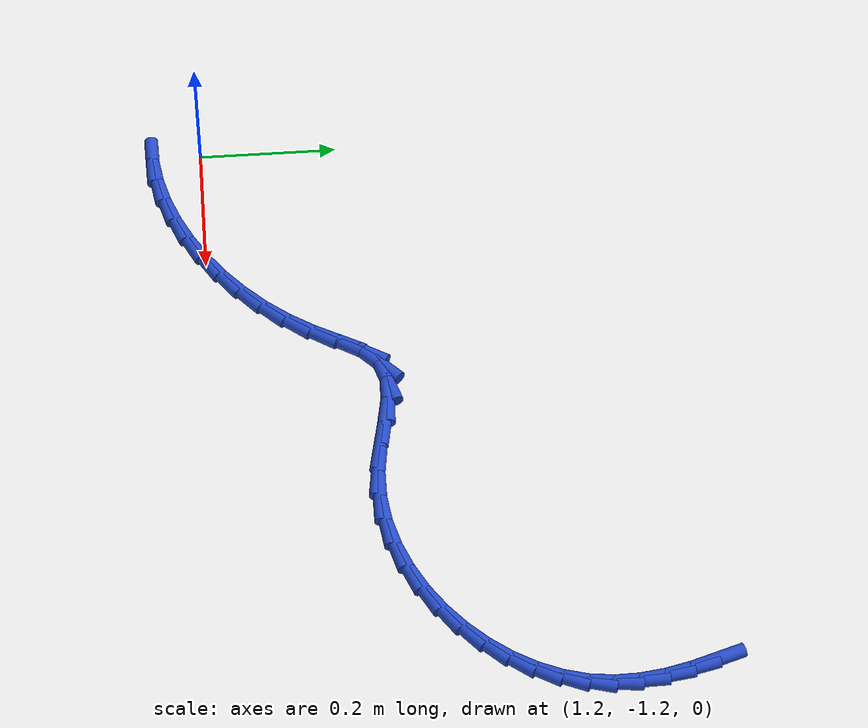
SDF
<sdf version="1.6">
 <world name="default">
  <model name="ground_plane">
   <static>1</static>
   <link name="link">
    <collision name="collision">
     <geometry><plane><normal>0 0 1</normal><size>100 100</size></plane></geometry>
     <surface><friction><ode><mu>100</mu><mu2>50</mu2></ode></friction></surface>
    </collision>
    <visual name="visual">
     <cast_shadows>0</cast_shadows>
     <geometry><plane><normal>0 0 1</normal><size>100 100</size></plane></geometry>
     <material>
      <script><uri>file://media/materials/scripts/gazebo.material</uri><name>Gazebo/WhiteGlow</name></script>
     </material>
    </visual>
   </link>
  </model>
  <model name="line">
   <link name="link_124">
    <pose>2.1224048429013864 -0.5371285283969793 0.01 0 1.57 -1.2620936176630924</pose>
    <collision name="collision">
     <geometry><cylinder><radius>0.01</radius><length>0.08</length></cylinder></geometry>
    </collision>
    <visual name="visual">
     <material>
      <script><name>Gazebo/Blue</name><uri>file://media/materials/scripts/gazebo.material</uri></script>
     </material>
     <geometry><cylinder><radius>0.01</radius><length>0.08</length></cylinder></geometry>
    </visual>
   </link>
   <link name="link_125">
    <pose>2.1337832556659233 -0.5728089770692286 0.01 0 1.57 -1.339660683928909</pose>
    <collision name="collision">
     <geometry><cylinder><radius>0.01</radius><length>0.08</length></cylinder></geometry>
    </collision>
    <visual name="visual">
     <material>
      <script><name>Gazebo/Blue</name><uri>file://media/materials/scripts/gazebo.material</uri></script>
     </material>
     <geometry><cylinder><radius>0.01</radius><length>0.08</length></cylinder></geometry>
    </visual>
   </link>
   <link name="link_126">
    <pose>2.1421646754886083 -0.6084228268894316 0.01 0 1.57 -1.4372988602923291</pose>
    <collision name="collision">
     <geometry><cylinder><radius>0.01</radius><length>0.08</length></cylinder></geometry>
    </collision>
    <visual name="visual">
     <material>
      <script><name>Gazebo/Blue</name><uri>file://media/materials/scripts/gazebo.material</uri></script>
     </material>
     <geometry><cylinder><radius>0.01</radius><length>0.08</length></cylinder></geometry>
    </visual>
   </link>
   <link name="link_127">
    <pose>2.146931417986489 -0.643917072365493 0.01 0 1.57 -1.5556684875766635</pose>
    <collision name="collision">
     <geometry><cylinder><radius>0.01</radius><length>0.08</length></cylinder></geometry>
    </collision>
    <visual name="visual">
     <material>
      <script><name>Gazebo/Blue</name><uri>file://media/materials/scripts/gazebo.material</uri></script>
     </material>
     <geometry><cylinder><radius>0.01</radius><length>0.08</length></cylinder></geometry>
    </visual>
   </link>
   <link name="link_128">
    <pose>2.1474657987766137 -0.6792387080053166 0.01 0 1.57 1.4484431895576104</pose>
    <collision name="collision">
     <geometry><cylinder><radius>0.01</radius><length>0.08</length></cylinder></geometry>
    </collision>
    <visual name="visual">
     <material>
      <script><name>Gazebo/Blue</name><uri>file://media/materials/scripts/gazebo.material</uri></script>
     </material>
     <geometry><cylinder><radius>0.01</radius><length>0.08</length></cylinder></geometry>
    </visual>
   </link>
   <link name="link_129">
    <pose>2.1431501334760306 -0.714334728316806 0.01 0 1.57 1.2999803305079474</pose>
    <collision name="collision">
     <geometry><cylinder><radius>0.01</radius><length>0.08</length></cylinder></geometry>
    </collision>
    <visual name="visual">
     <material>
      <script><name>Gazebo/Blue</name><uri>file://media/materials/scripts/gazebo.material</uri></script>
     </material>
     <geometry><cylinder><radius>0.01</radius><length>0.08</length></cylinder></geometry>
    </visual>
   </link>
   <link name="link_130">
    <pose>2.133498762770912 -0.7490973015410576 0.01 0 1.57 1.1611290758077635</pose>
    <collision name="collision">
     <geometry><cylinder><radius>0.01</radius><length>0.08</length></cylinder></geometry>
    </collision>
    <visual name="visual">
     <material>
      <script><name>Gazebo/Blue</name><uri>file://media/materials/scripts/gazebo.material</uri></script>
     </material>
     <geometry><cylinder><radius>0.01</radius><length>0.08</length></cylinder></geometry>
    </visual>
   </link>
   <link name="link_131">
    <pose>2.11872045647949 -0.7831302191955147 0.01 0 1.57 1.0352894594895294</pose>
    <collision name="collision">
     <geometry><cylinder><radius>0.01</radius><length>0.08</length></cylinder></geometry>
    </collision>
    <visual name="visual">
     <material>
      <script><name>Gazebo/Blue</name><uri>file://media/materials/scripts/gazebo.material</uri></script>
     </material>
     <geometry><cylinder><radius>0.01</radius><length>0.08</length></cylinder></geometry>
    </visual>
   </link>
   <link name="link_132">
    <pose>2.099251495986804 -0.8159427936964466 0.01 0 1.57 0.9191740378306853</pose>
    <collision name="collision">
     <geometry><cylinder><radius>0.01</radius><length>0.08</length></cylinder></geometry>
    </collision>
    <visual name="visual">
     <material>
      <script><name>Gazebo/Blue</name><uri>file://media/materials/scripts/gazebo.material</uri></script>
     </material>
     <geometry><cylinder><radius>0.01</radius><length>0.08</length></cylinder></geometry>
    </visual>
   </link>
   <link name="link_133">
    <pose>2.0755282943523317 -0.847044282779457 0.01 0 1.57 0.8094653625543714</pose>
    <collision name="collision">
     <geometry><cylinder><radius>0.01</radius><length>0.08</length></cylinder></geometry>
    </collision>
    <visual name="visual">
     <material>
      <script><name>Gazebo/Blue</name><uri>file://media/materials/scripts/gazebo.material</uri></script>
     </material>
     <geometry><cylinder><radius>0.01</radius><length>0.08</length></cylinder></geometry>
    </visual>
   </link>
   <link name="link_134">
    <pose>2.047987264635555 -0.8759439441801534 0.01 0 1.57 0.7030469076351508</pose>
    <collision name="collision">
     <geometry><cylinder><radius>0.01</radius><length>0.08</length></cylinder></geometry>
    </collision>
    <visual name="visual">
     <material>
      <script><name>Gazebo/Blue</name><uri>file://media/materials/scripts/gazebo.material</uri></script>
     </material>
     <geometry><cylinder><radius>0.01</radius><length>0.08</length></cylinder></geometry>
    </visual>
   </link>
   <link name="link_135">
    <pose>2.017064819895954 -0.9021510356341418 0.01 0 1.57 0.5970537972132473</pose>
    <collision name="collision">
     <geometry><cylinder><radius>0.01</radius><length>0.08</length></cylinder></geometry>
    </collision>
    <visual name="visual">
     <material>
      <script><name>Gazebo/Blue</name><uri>file://media/materials/scripts/gazebo.material</uri></script>
     </material>
     <geometry><cylinder><radius>0.01</radius><length>0.08</length></cylinder></geometry>
    </visual>
   </link>
   <link name="link_136">
    <pose>1.9831973731930082 -0.9251748148770279 0.01 0 1.57 0.48886884635844946</pose>
    <collision name="collision">
     <geometry><cylinder><radius>0.01</radius><length>0.08</length></cylinder></geometry>
    </collision>
    <visual name="visual">
     <material>
      <script><name>Gazebo/Blue</name><uri>file://media/materials/scripts/gazebo.material</uri></script>
     </material>
     <geometry><cylinder><radius>0.01</radius><length>0.08</length></cylinder></geometry>
    </visual>
   </link>
   <link name="link_137">
    <pose>1.9468213375861982 -0.9445245396444181 0.01 0 1.57 0.37614101794132515</pose>
    <collision name="collision">
     <geometry><cylinder><radius>0.01</radius><length>0.08</length></cylinder></geometry>
    </collision>
    <visual name="visual">
     <material>
      <script><name>Gazebo/Blue</name><uri>file://media/materials/scripts/gazebo.material</uri></script>
     </material>
     <geometry><cylinder><radius>0.01</radius><length>0.08</length></cylinder></geometry>
    </visual>
   </link>
   <link name="link_138">
    <pose>1.9083731261350034 -0.9597094676719191 0.01 0 1.57 0.2568797689287992</pose>
    <collision name="collision">
     <geometry><cylinder><radius>0.01</radius><length>0.08</length></cylinder></geometry>
    </collision>
    <visual name="visual">
     <material>
      <script><name>Gazebo/Blue</name><uri>file://media/materials/scripts/gazebo.material</uri></script>
     </material>
     <geometry><cylinder><radius>0.01</radius><length>0.08</length></cylinder></geometry>
    </visual>
   </link>
   <link name="link_139">
    <pose>1.8682891518989053 -0.9702388566951357 0.01 0 1.57 0.1296626749891366</pose>
    <collision name="collision">
     <geometry><cylinder><radius>0.01</radius><length>0.08</length></cylinder></geometry>
    </collision>
    <visual name="visual">
     <material>
      <script><name>Gazebo/Blue</name><uri>file://media/materials/scripts/gazebo.material</uri></script>
     </material>
     <geometry><cylinder><radius>0.01</radius><length>0.08</length></cylinder></geometry>
    </visual>
   </link>
   <link name="link_140">
    <pose>1.8270058279373838 -0.9756219644496746 0.01 0 1.57 -0.006038888788687265</pose>
    <collision name="collision">
     <geometry><cylinder><radius>0.01</radius><length>0.08</length></cylinder></geometry>
    </collision>
    <visual name="visual">
     <material>
      <script><name>Gazebo/Blue</name><uri>file://media/materials/scripts/gazebo.material</uri></script>
     </material>
     <geometry><cylinder><radius>0.01</radius><length>0.08</length></cylinder></geometry>
    </visual>
   </link>
   <link name="link_141">
    <pose>1.784959567309919 -0.9753680486711425 0.01 0 1.57 -0.1397491013489656</pose>
    <collision name="collision">
     <geometry><cylinder><radius>0.01</radius><length>0.08</length></cylinder></geometry>
    </collision>
    <visual name="visual">
     <material>
      <script><name>Gazebo/Blue</name><uri>file://media/materials/scripts/gazebo.material</uri></script>
     </material>
     <geometry><cylinder><radius>0.01</radius><length>0.08</length></cylinder></geometry>
    </visual>
   </link>
   <link name="link_142">
    <pose>1.7426822621373508 -0.9694210682979123 0.01 0 1.57 -0.20642350490507674</pose>
    <collision name="collision">
     <geometry><cylinder><radius>0.01</radius><length>0.08</length></cylinder></geometry>
    </collision>
    <visual name="visual">
     <material>
      <script><name>Gazebo/Blue</name><uri>file://media/materials/scripts/gazebo.material</uri></script>
     </material>
     <geometry><cylinder><radius>0.01</radius><length>0.08</length></cylinder></geometry>
    </visual>
   </link>
   <link name="link_143">
    <pose>1.7013748487272566 -0.9607710355971079 0.01 0 1.57 -0.1797711318207617</pose>
    <collision name="collision">
     <geometry><cylinder><radius>0.01</radius><length>0.08</length></cylinder></geometry>
    </collision>
    <visual name="visual">
     <material>
      <script><name>Gazebo/Blue</name><uri>file://media/materials/scripts/gazebo.material</uri></script>
     </material>
     <geometry><cylinder><radius>0.01</radius><length>0.08</length></cylinder></geometry>
    </visual>
   </link>
   <link name="link_144">
    <pose>1.662524382939324 -0.9537106203155741 0.01 0 1.57 -0.03359854802306128</pose>
    <collision name="collision">
     <geometry><cylinder><radius>0.01</radius><length>0.08</length></cylinder></geometry>
    </collision>
    <visual name="visual">
     <material>
      <script><name>Gazebo/Blue</name><uri>file://media/materials/scripts/gazebo.material</uri></script>
     </material>
     <geometry><cylinder><radius>0.01</radius><length>0.08</length></cylinder></geometry>
    </visual>
   </link>
   <link name="link_145">
    <pose>1.6276190004966922 -0.9525374086492276 0.01 0 1.57 0.2967380435669778</pose>
    <collision name="collision">
     <geometry><cylinder><radius>0.01</radius><length>0.08</length></cylinder></geometry>
    </collision>
    <visual name="visual">
     <material>
      <script><name>Gazebo/Blue</name><uri>file://media/materials/scripts/gazebo.material</uri></script>
     </material>
     <geometry><cylinder><radius>0.01</radius><length>0.08</length></cylinder></geometry>
    </visual>
   </link>
   <link name="link_146">
    <pose>1.5981468371225045 -0.9615489867939861 0.01 0 1.57 0.7685287061778077</pose>
    <collision name="collision">
     <geometry><cylinder><radius>0.01</radius><length>0.08</length></cylinder></geometry>
    </collision>
    <visual name="visual">
     <material>
      <script><name>Gazebo/Blue</name><uri>file://media/materials/scripts/gazebo.material</uri></script>
     </material>
     <geometry><cylinder><radius>0.01</radius><length>0.08</length></cylinder></geometry>
    </visual>
   </link>
   <link name="link_147">
    <pose>1.5750127070527682 -0.9839154733385947 0.01 0 1.57 1.029932352507426</pose>
    <collision name="collision">
     <geometry><cylinder><radius>0.01</radius><length>0.08</length></cylinder></geometry>
    </collision>
    <visual name="visual">
     <material>
      <script><name>Gazebo/Blue</name><uri>file://media/materials/scripts/gazebo.material</uri></script>
     </material>
     <geometry><cylinder><radius>0.01</radius><length>0.08</length></cylinder></geometry>
    </visual>
   </link>
   <link name="link_148">
    <pose>1.5556658116827078 -1.016127837163021 0.01 0 1.57 1.0781374762268152</pose>
    <collision name="collision">
     <geometry><cylinder><radius>0.01</radius><length>0.08</length></cylinder></geometry>
    </collision>
    <visual name="visual">
     <material>
      <script><name>Gazebo/Blue</name><uri>file://media/materials/scripts/gazebo.material</uri></script>
     </material>
     <geometry><cylinder><radius>0.01</radius><length>0.08</length></cylinder></geometry>
    </visual>
   </link>
   <link name="link_149">
    <pose>1.5362876259072802 -1.05222673045854 0.01 0 1.57 1.0002196221172226</pose>
    <collision name="collision">
     <geometry><cylinder><radius>0.01</radius><length>0.08</length></cylinder></geometry>
    </collision>
    <visual name="visual">
     <material>
      <script><name>Gazebo/Blue</name><uri>file://media/materials/scripts/gazebo.material</uri></script>
     </material>
     <geometry><cylinder><radius>0.01</radius><length>0.08</length></cylinder></geometry>
    </visual>
   </link>
   <link name="link_150">
    <pose>1.5138065706799735 -1.0872558182557492 0.01 0 1.57 0.9037243471349898</pose>
    <collision name="collision">
     <geometry><cylinder><radius>0.01</radius><length>0.08</length></cylinder></geometry>
    </collision>
    <visual name="visual">
     <material>
      <script><name>Gazebo/Blue</name><uri>file://media/materials/scripts/gazebo.material</uri></script>
     </material>
     <geometry><cylinder><radius>0.01</radius><length>0.08</length></cylinder></geometry>
    </visual>
   </link>
   <link name="link_151">
    <pose>1.48797605391103 -1.1200565015462904 0.01 0 1.57 0.8116067317132654</pose>
    <collision name="collision">
     <geometry><cylinder><radius>0.01</radius><length>0.08</length></cylinder></geometry>
    </collision>
    <visual name="visual">
     <material>
      <script><name>Gazebo/Blue</name><uri>file://media/materials/scripts/gazebo.material</uri></script>
     </material>
     <geometry><cylinder><radius>0.01</radius><length>0.08</length></cylinder></geometry>
    </visual>
   </link>
   <link name="link_152">
    <pose>1.4592155029914151 -1.1503655362991576 0.01 0 1.57 0.7222946957415102</pose>
    <collision name="collision">
     <geometry><cylinder><radius>0.01</radius><length>0.08</length></cylinder></geometry>
    </collision>
    <visual name="visual">
     <material>
      <script><name>Gazebo/Blue</name><uri>file://media/materials/scripts/gazebo.material</uri></script>
     </material>
     <geometry><cylinder><radius>0.01</radius><length>0.08</length></cylinder></geometry>
    </visual>
   </link>
   <link name="link_153">
    <pose>1.4279443453120912 -1.177919678483346 0.01 0 1.57 0.6341175653532204</pose>
    <collision name="collision">
     <geometry><cylinder><radius>0.01</radius><length>0.08</length></cylinder></geometry>
    </collision>
    <visual name="visual">
     <material>
      <script><name>Gazebo/Blue</name><uri>file://media/materials/scripts/gazebo.material</uri></script>
     </material>
     <geometry><cylinder><radius>0.01</radius><length>0.08</length></cylinder></geometry>
    </visual>
   </link>
   <link name="link_154">
    <pose>1.3945820082640223 -1.2024556840678515 0.01 0 1.57 0.5453197938729328</pose>
    <collision name="collision">
     <geometry><cylinder><radius>0.01</radius><length>0.08</length></cylinder></geometry>
    </collision>
    <visual name="visual">
     <material>
      <script><name>Gazebo/Blue</name><uri>file://media/materials/scripts/gazebo.material</uri></script>
     </material>
     <geometry><cylinder><radius>0.01</radius><length>0.08</length></cylinder></geometry>
    </visual>
   </link>
   <link name="link_155">
    <pose>1.359547919238172 -1.2237103090216686 0.01 0 1.57 0.45405124991394696</pose>
    <collision name="collision">
     <geometry><cylinder><radius>0.01</radius><length>0.08</length></cylinder></geometry>
    </collision>
    <visual name="visual">
     <material>
      <script><name>Gazebo/Blue</name><uri>file://media/materials/scripts/gazebo.material</uri></script>
     </material>
     <geometry><cylinder><radius>0.01</radius><length>0.08</length></cylinder></geometry>
    </visual>
   </link>
   <link name="link_156">
    <pose>1.3232615056255042 -1.241420309313792 0.01 0 1.57 0.3583546800283412</pose>
    <collision name="collision">
     <geometry><cylinder><radius>0.01</radius><length>0.08</length></cylinder></geometry>
    </collision>
    <visual name="visual">
     <material>
      <script><name>Gazebo/Blue</name><uri>file://media/materials/scripts/gazebo.material</uri></script>
     </material>
     <geometry><cylinder><radius>0.01</radius><length>0.08</length></cylinder></geometry>
    </visual>
   </link>
   <link name="link_157">
    <pose>1.286142194816981 -1.2553224409132184 0.01 0 1.57 0.256176437823529</pose>
    <collision name="collision">
     <geometry><cylinder><radius>0.01</radius><length>0.08</length></cylinder></geometry>
    </collision>
    <visual name="visual">
     <material>
      <script><name>Gazebo/Blue</name><uri>file://media/materials/scripts/gazebo.material</uri></script>
     </material>
     <geometry><cylinder><radius>0.01</radius><length>0.08</length></cylinder></geometry>
    </visual>
   </link>
   <link name="link_158">
    <pose>1.2486094142035693 -1.265153459788941 0.01 0 1.57 0.14543867658519302</pose>
    <collision name="collision">
     <geometry><cylinder><radius>0.01</radius><length>0.08</length></cylinder></geometry>
    </collision>
    <visual name="visual">
     <material>
      <script><name>Gazebo/Blue</name><uri>file://media/materials/scripts/gazebo.material</uri></script>
     </material>
     <geometry><cylinder><radius>0.01</radius><length>0.08</length></cylinder></geometry>
    </visual>
   </link>
   <link name="link_159">
    <pose>1.2110825911762304 -1.270650121909956 0.01 0 1.57 0.02422777832189425</pose>
    <collision name="collision">
     <geometry><cylinder><radius>0.01</radius><length>0.08</length></cylinder></geometry>
    </collision>
    <visual name="visual">
     <material>
      <script><name>Gazebo/Blue</name><uri>file://media/materials/scripts/gazebo.material</uri></script>
     </material>
     <geometry><cylinder><radius>0.01</radius><length>0.08</length></cylinder></geometry>
    </visual>
   </link>
  </model>
 </world>
</sdf>
